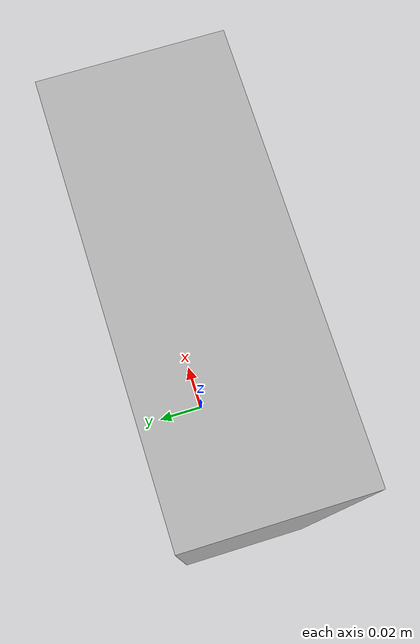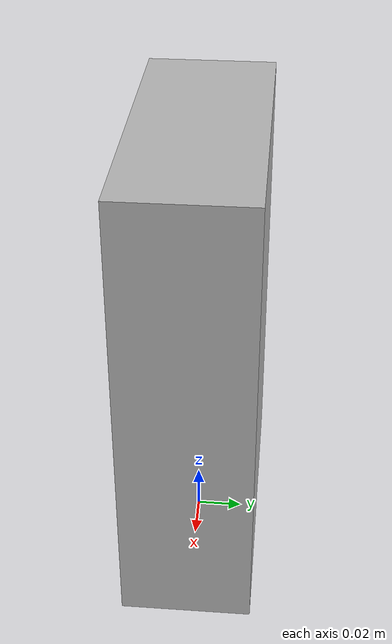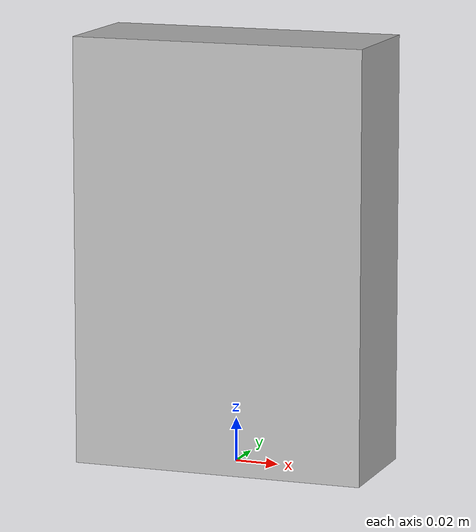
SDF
<?xml version='1.0'?>
<sdf version="1.4">
  <model name="cardboard_box">
    <static>false</static>
    <link name="link">
    <pose>0 0 0.0975 0 0 0</pose>
      <inertial>
        <mass>1.0</mass>
        <inertia> <!-- inertias are tricky to compute -->
          <!-- http://gazebosim.org/tutorials?tut=inertia&cat=build_robot -->
          <ixx>0.083</ixx>       <!-- for a box: ixx = 0.083 * mass * (y*y + z*z) -->
          <ixy>0.0</ixy>         <!-- for a box: ixy = 0 -->
          <ixz>0.0</ixz>         <!-- for a box: ixz = 0 -->
          <iyy>0.083</iyy>       <!-- for a box: iyy = 0.083 * mass * (x*x + z*z) -->
          <iyz>0.0</iyz>         <!-- for a box: iyz = 0 -->
          <izz>0.083</izz>       <!-- for a box: izz = 0.083 * mass * (x*x + y*y) -->
        </inertia>
      </inertial>
      <collision name="collision">
        <geometry>
          <box>
            <size>0.135 0.055 0.195</size>
          </box>
        </geometry>
      </collision>
      <visual name="visual">
        <geometry>
          <box>
            <size>0.135 0.055 0.195</size>
          </box>
        </geometry>
      </visual>
    </link>
  </model>
</sdf>
